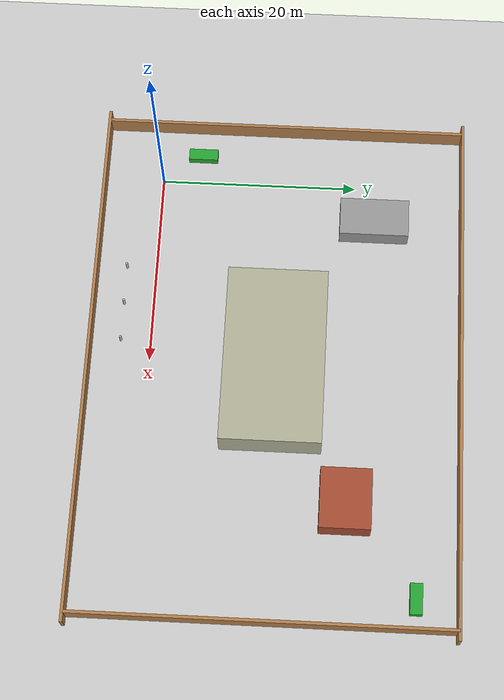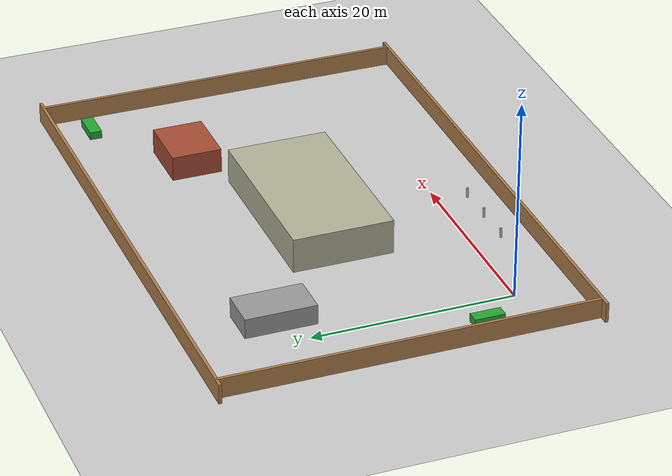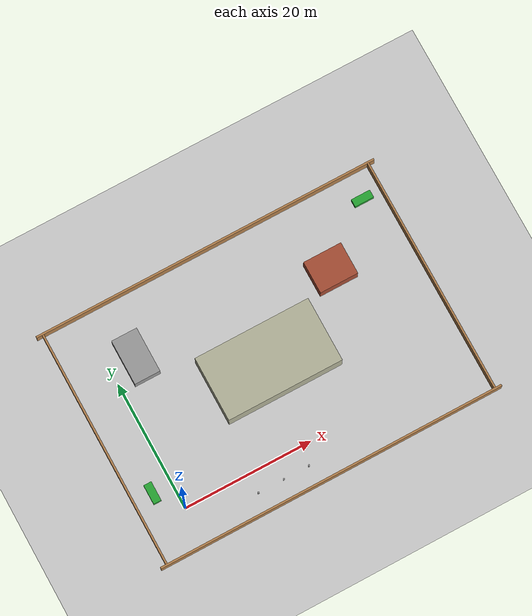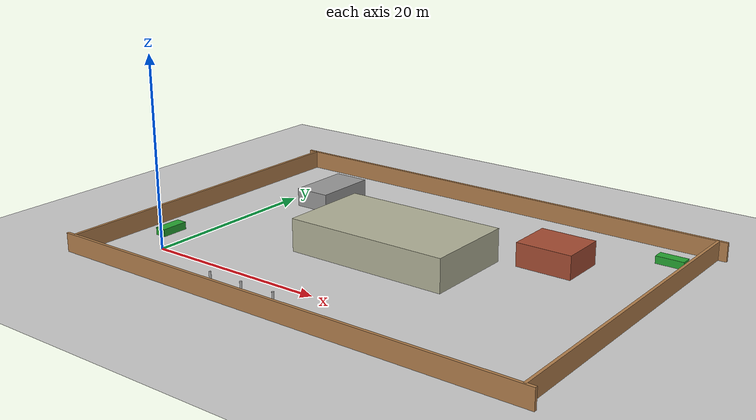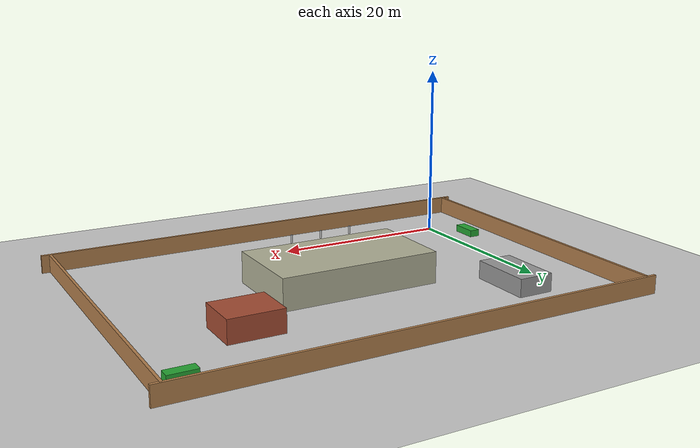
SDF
<?xml version="1.0" ?>
<sdf version="1.6">
  <world name="campus">

    <include>
      <uri>model://sun</uri>
    </include>

    <scene>
      <ambient>0.5 0.5 0.5 1</ambient>
      <background>0.7 0.8 0.9 1</background>
      <shadows>true</shadows>
    </scene>

    <physics type="ode">
      <max_step_size>0.002</max_step_size>
      <real_time_factor>1.0</real_time_factor>
      <real_time_update_rate>500</real_time_update_rate>
      <ode>
        <solver>
          <type>quick</type>
          <iters>60</iters>
          <sor>1.3</sor>
        </solver>
        <constraints>
          <cfm>0.0</cfm>
          <erp>0.2</erp>
          <contact_max_correcting_vel>100.0</contact_max_correcting_vel>
          <contact_surface_layer>0.001</contact_surface_layer>
        </constraints>
      </ode>
    </physics>

    <!-- Ground -->
    <model name="ground_plane">
      <static>true</static>
      <link name="link">
        <collision name="collision">
          <geometry>
            <plane>
              <normal>0 0 1</normal>
              <size>200 200</size>
            </plane>
          </geometry>
          <surface>
            <friction>
              <ode><mu>0.9</mu><mu2>0.9</mu2></ode>
            </friction>
          </surface>
        </collision>
        <visual name="visual">
          <geometry>
            <plane>
              <normal>0 0 1</normal>
              <size>200 200</size>
            </plane>
          </geometry>
          <material>
            <script>
              <uri>file://media/materials/scripts/gazebo.material</uri>
              <name>Gazebo/Grey</name>
            </script>
          </material>
        </visual>
      </link>
    </model>

    <!--
      Perimeter walls. The courtyard spans roughly x in [-6, 46] and
      y in [-6, 31], which contains the campus_loop route with margin.
    -->
    <model name="perimeter">
      <static>true</static>

      <link name="wall_south">
        <pose>20 -6 1.0 0 0 0</pose>
        <collision name="c">
          <geometry><box><size>54 0.3 2.0</size></box></geometry>
        </collision>
        <visual name="v">
          <geometry><box><size>54 0.3 2.0</size></box></geometry>
          <material>
            <script>
              <uri>file://media/materials/scripts/gazebo.material</uri>
              <name>Gazebo/Wood</name>
            </script>
          </material>
        </visual>
      </link>

      <link name="wall_north">
        <pose>20 31 1.0 0 0 0</pose>
        <collision name="c">
          <geometry><box><size>54 0.3 2.0</size></box></geometry>
        </collision>
        <visual name="v">
          <geometry><box><size>54 0.3 2.0</size></box></geometry>
          <material>
            <script>
              <uri>file://media/materials/scripts/gazebo.material</uri>
              <name>Gazebo/Wood</name>
            </script>
          </material>
        </visual>
      </link>

      <link name="wall_west">
        <pose>-6 12.5 1.0 0 0 0</pose>
        <collision name="c">
          <geometry><box><size>0.3 37 2.0</size></box></geometry>
        </collision>
        <visual name="v">
          <geometry><box><size>0.3 37 2.0</size></box></geometry>
          <material>
            <script>
              <uri>file://media/materials/scripts/gazebo.material</uri>
              <name>Gazebo/Wood</name>
            </script>
          </material>
        </visual>
      </link>

      <link name="wall_east">
        <pose>46 12.5 1.0 0 0 0</pose>
        <collision name="c">
          <geometry><box><size>0.3 37 2.0</size></box></geometry>
        </collision>
        <visual name="v">
          <geometry><box><size>0.3 37 2.0</size></box></geometry>
          <material>
            <script>
              <uri>file://media/materials/scripts/gazebo.material</uri>
              <name>Gazebo/Wood</name>
            </script>
          </material>
        </visual>
      </link>
    </model>

    <!--
      Central building block, inside the campus_loop ring. This is the main
      feature that makes the map asymmetric and gives the scan matcher
      something to lock onto.
    -->
    <model name="library">
      <static>true</static>
      <link name="link">
        <pose>20 12.5 1.75 0 0 0</pose>
        <collision name="c">
          <geometry><box><size>18 10 3.5</size></box></geometry>
        </collision>
        <visual name="v">
          <geometry><box><size>18 10 3.5</size></box></geometry>
          <material>
            <script>
              <uri>file://media/materials/scripts/gazebo.material</uri>
              <name>Gazebo/Residential</name>
            </script>
          </material>
        </visual>
      </link>
    </model>

    <!-- Asymmetric annexe, so the courtyard cannot be confused end for end. -->
    <model name="annexe">
      <static>true</static>
      <link name="link">
        <pose>34 20 1.25 0 0 0</pose>
        <collision name="c">
          <geometry><box><size>6 5 2.5</size></box></geometry>
        </collision>
        <visual name="v">
          <geometry><box><size>6 5 2.5</size></box></geometry>
          <material>
            <script>
              <uri>file://media/materials/scripts/gazebo.material</uri>
              <name>Gazebo/Bricks</name>
            </script>
          </material>
        </visual>
      </link>
    </model>

    <model name="bike_shed">
      <static>true</static>
      <link name="link">
        <pose>4 22 1.0 0 0 0</pose>
        <collision name="c">
          <geometry><box><size>4 7 2.0</size></box></geometry>
        </collision>
        <visual name="v">
          <geometry><box><size>4 7 2.0</size></box></geometry>
          <material>
            <script>
              <uri>file://media/materials/scripts/gazebo.material</uri>
              <name>Gazebo/Grey</name>
            </script>
          </material>
        </visual>
      </link>
    </model>

    <!-- Planters outside the route, useful landmarks for scan matching. -->
    <model name="planter_a">
      <static>true</static>
      <link name="link">
        <pose>-3 4 0.4 0 0 0</pose>
        <collision name="c">
          <geometry><box><size>1.2 3.0 0.8</size></box></geometry>
        </collision>
        <visual name="v">
          <geometry><box><size>1.2 3.0 0.8</size></box></geometry>
          <material>
            <script>
              <uri>file://media/materials/scripts/gazebo.material</uri>
              <name>Gazebo/Green</name>
            </script>
          </material>
        </visual>
      </link>
    </model>

    <model name="planter_b">
      <static>true</static>
      <link name="link">
        <pose>43 27 0.4 0 0 0</pose>
        <collision name="c">
          <geometry><box><size>3.0 1.2 0.8</size></box></geometry>
        </collision>
        <visual name="v">
          <geometry><box><size>3.0 1.2 0.8</size></box></geometry>
          <material>
            <script>
              <uri>file://media/materials/scripts/gazebo.material</uri>
              <name>Gazebo/Green</name>
            </script>
          </material>
        </visual>
      </link>
    </model>

    <!-- Bollard row along the south approach. -->
    <model name="bollards">
      <static>true</static>
      <link name="b1">
        <pose>10 -3 0.5 0 0 0</pose>
        <collision name="c">
          <geometry><cylinder><radius>0.12</radius><length>1.0</length></cylinder></geometry>
        </collision>
        <visual name="v">
          <geometry><cylinder><radius>0.12</radius><length>1.0</length></cylinder></geometry>
        </visual>
      </link>
      <link name="b2">
        <pose>14 -3 0.5 0 0 0</pose>
        <collision name="c">
          <geometry><cylinder><radius>0.12</radius><length>1.0</length></cylinder></geometry>
        </collision>
        <visual name="v">
          <geometry><cylinder><radius>0.12</radius><length>1.0</length></cylinder></geometry>
        </visual>
      </link>
      <link name="b3">
        <pose>18 -3 0.5 0 0 0</pose>
        <collision name="c">
          <geometry><cylinder><radius>0.12</radius><length>1.0</length></cylinder></geometry>
        </collision>
        <visual name="v">
          <geometry><cylinder><radius>0.12</radius><length>1.0</length></cylinder></geometry>
        </visual>
      </link>
    </model>

  </world>
</sdf>
